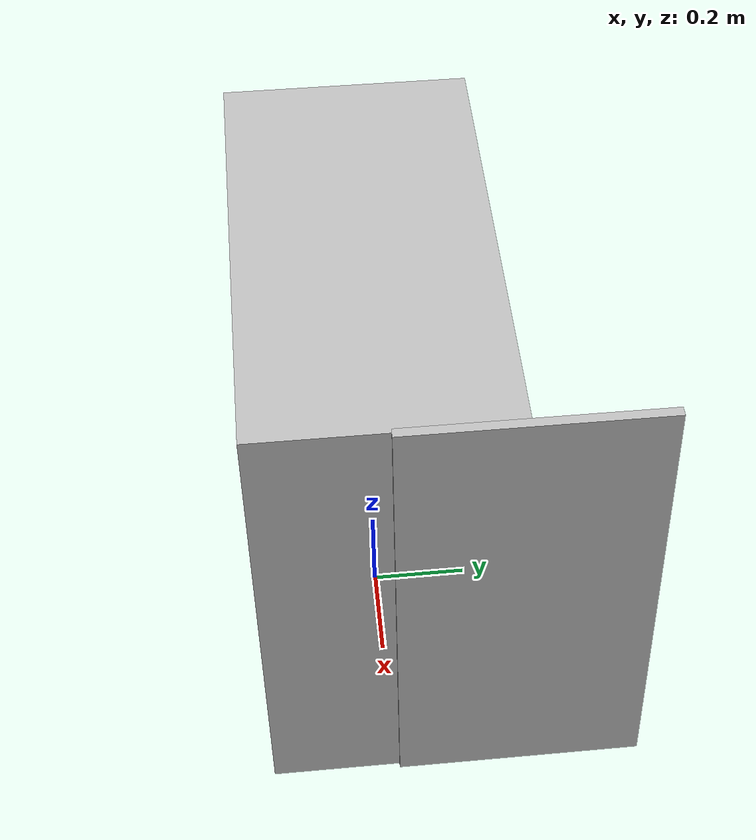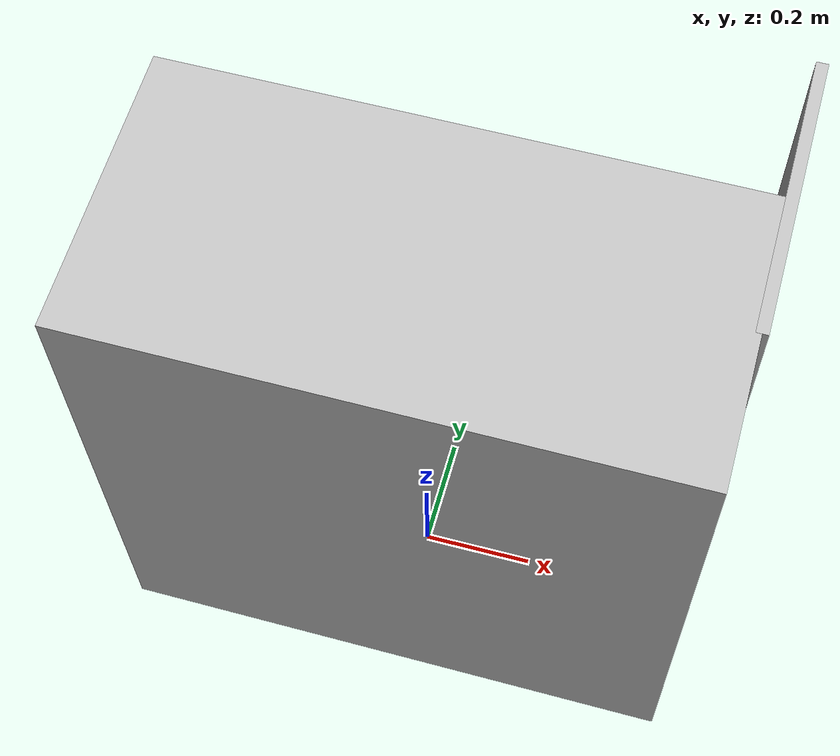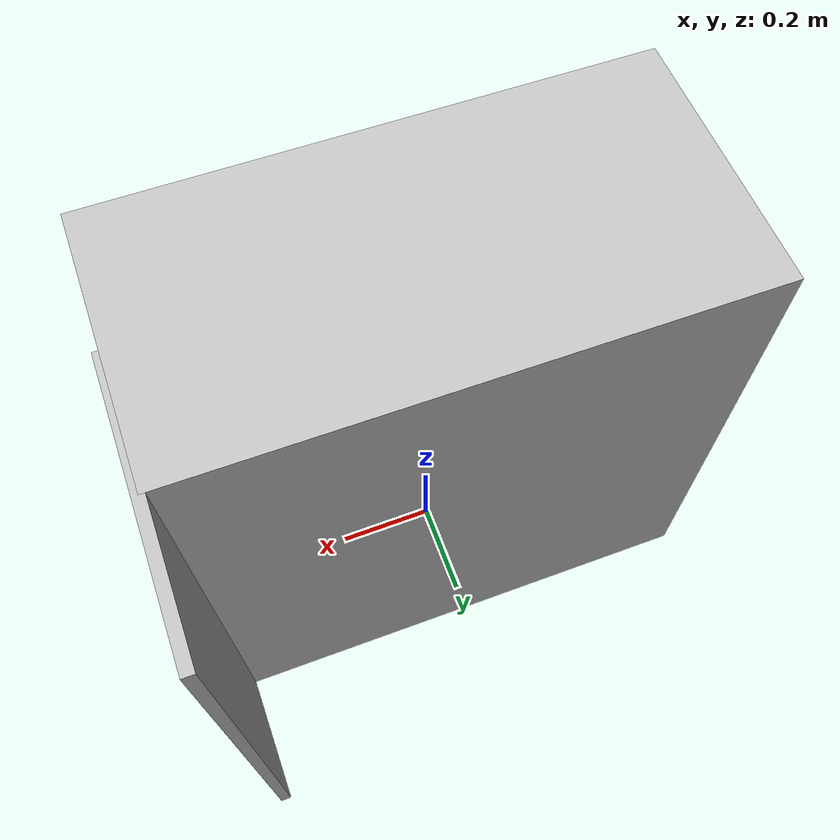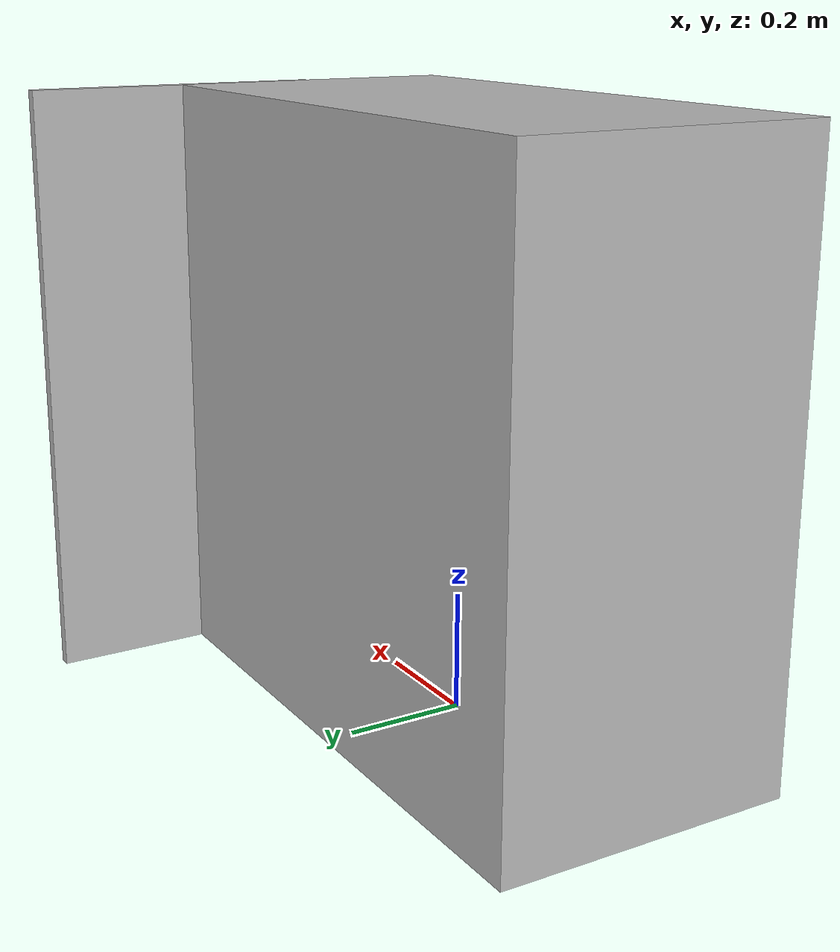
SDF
<?xml version="1.0"?>
<sdf version="1.8">
  <model name="articulated_cabinet">
    <link name="base_link">
      <inertial>
        <mass>10.0</mass>
        <inertia>
          <ixx>1.0</ixx>
          <iyy>1.0</iyy>
          <izz>1.0</izz>
        </inertia>
      </inertial>
      <visual name="base_visual">
        <pose>0 0 0.5 0 0 0</pose>
        <geometry>
          <mesh>
            <uri>cube.obj</uri>
            <scale>1.0 0.5 1.0</scale>
          </mesh>
        </geometry>
      </visual>
      <collision name="base_collision_1">
        <pose>0 0 0.5 0 0 0</pose>
        <geometry>
          <mesh>
            <uri>cube.obj</uri>
            <scale>1.0 0.5 1.0</scale>
          </mesh>
        </geometry>
      </collision>
      <collision name="base_collision_2">
        <pose>0 0 0.2 0 0 0</pose>
        <geometry>
          <mesh>
            <uri>cube.obj</uri>
            <scale>0.9 0.45 0.4</scale>
          </mesh>
        </geometry>
      </collision>
    </link>

    <link name="door_link">
      <pose>0.5 0 0.5 0 0 0</pose>
      <inertial>
        <mass>1.0</mass>
        <inertia>
          <ixx>0.1</ixx>
          <iyy>0.1</iyy>
          <izz>0.1</izz>
        </inertia>
      </inertial>
      <visual name="door_visual">
        <pose>0 0.26 0 0 0 0</pose>
        <geometry>
          <mesh>
            <uri>cube.obj</uri>
            <scale>0.02 0.5 1.0</scale>
          </mesh>
        </geometry>
      </visual>
      <collision name="door_collision_1">
        <pose>0 0.26 0 0 0 0</pose>
        <geometry>
          <mesh>
            <uri>cube.obj</uri>
            <scale>0.02 0.5 1.0</scale>
          </mesh>
        </geometry>
      </collision>
      <collision name="door_collision_2">
        <pose>0 0.26 0.2 0 0 0</pose>
        <geometry>
          <mesh>
            <uri>cube.obj</uri>
            <scale>0.02 0.4 0.6</scale>
          </mesh>
        </geometry>
      </collision>
    </link>

    <joint name="door_hinge" type="revolute">
      <parent>base_link</parent>
      <child>door_link</child>
      <pose>0.5 0 0.5 0 0 0</pose>
      <axis>
        <xyz>0 0 1</xyz>
        <limit>
          <lower>0</lower>
          <upper>1.57</upper>
        </limit>
      </axis>
    </joint>

    <link name="drawer_link">
      <pose>0 0 0.2 0 0 0</pose>
      <inertial>
        <mass>1.0</mass>
        <inertia>
          <ixx>0.1</ixx>
          <iyy>0.1</iyy>
          <izz>0.1</izz>
        </inertia>
      </inertial>
      <visual name="drawer_visual">
        <geometry>
          <mesh>
            <uri>cube.obj</uri>
            <scale>0.6 0.4 0.2</scale>
          </mesh>
        </geometry>
      </visual>
      <collision name="drawer_collision_1">
        <geometry>
          <mesh>
            <uri>cube.obj</uri>
            <scale>0.6 0.4 0.2</scale>
          </mesh>
        </geometry>
      </collision>
      <collision name="drawer_collision_2">
        <pose>0 0 0.05 0 0 0</pose>
        <geometry>
          <mesh>
            <uri>cube.obj</uri>
            <scale>0.5 0.35 0.1</scale>
          </mesh>
        </geometry>
      </collision>
    </link>

    <joint name="drawer_slide" type="prismatic">
      <parent>base_link</parent>
      <child>drawer_link</child>
      <pose>0 0.25 0.2 0 0 0</pose>
      <axis>
        <xyz>0 1 0</xyz>
        <limit>
          <lower>-0.3</lower>
          <upper>0</upper>
        </limit>
      </axis>
    </joint>
  </model>
</sdf>
